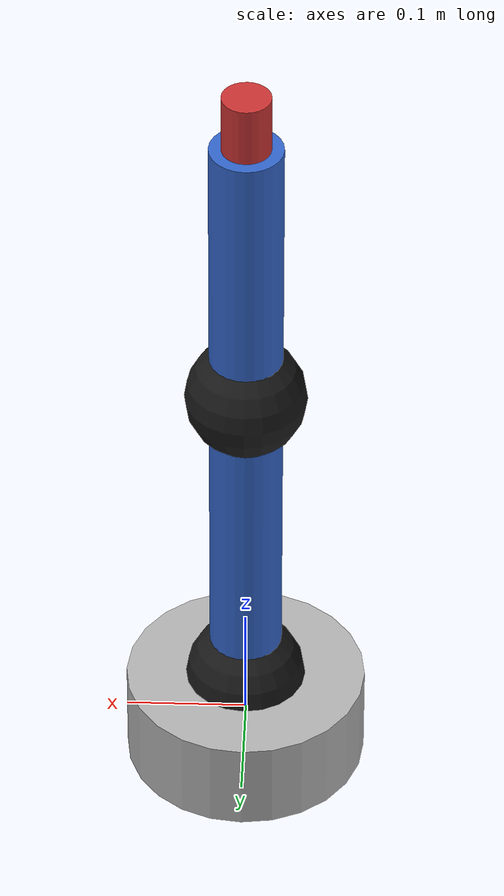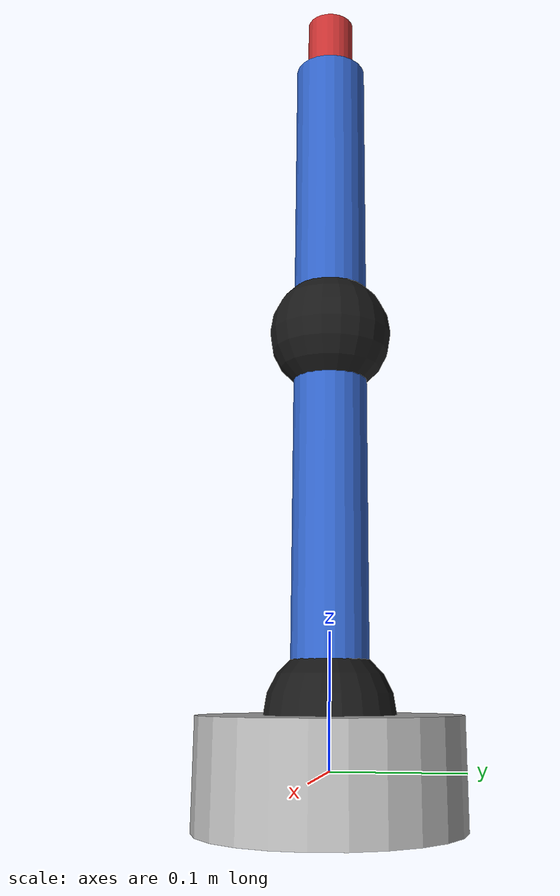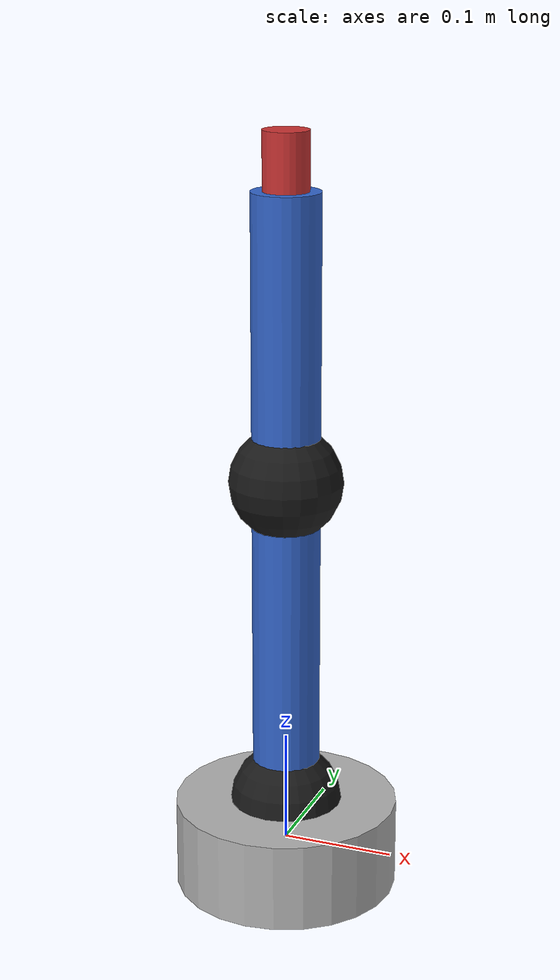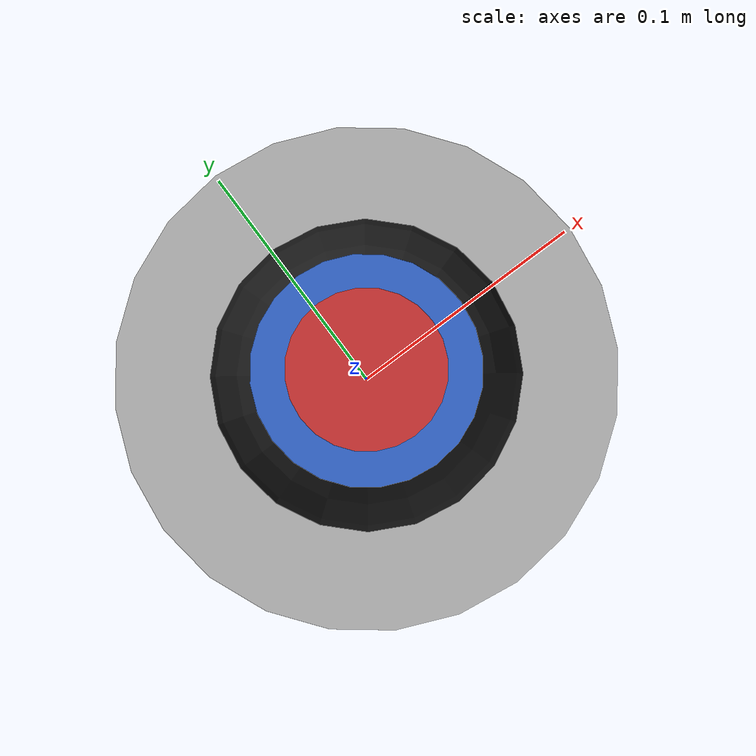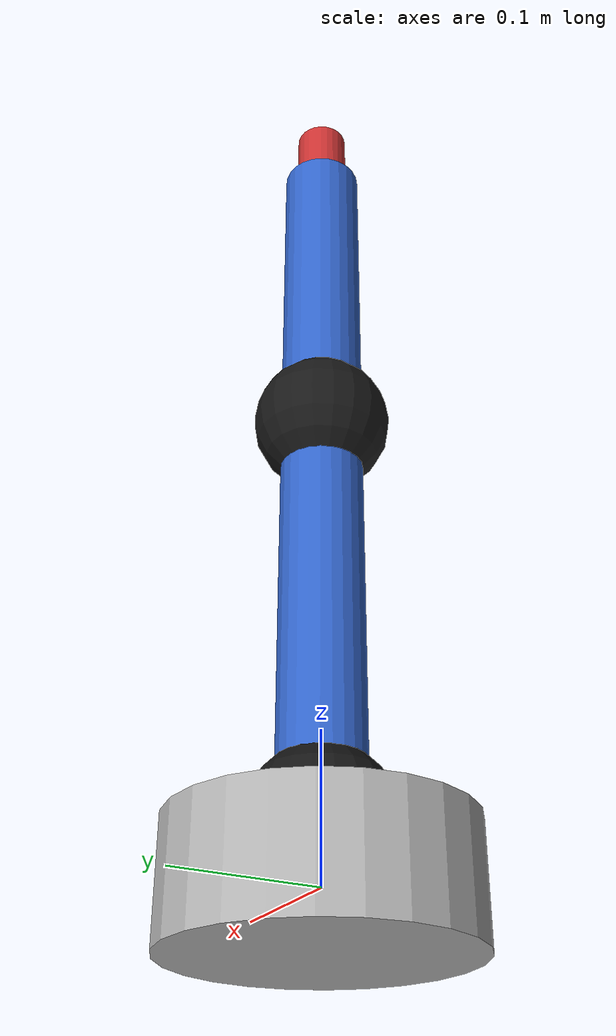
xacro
<?xml version="1.0"?>

<robot xmlns:xacro="http://www.ros.org/wiki/xacro" name="basicmicro_two_axis_arm">

  <!-- Xacro arguments with arm defaults -->
  <xacro:arg name="port" default="/dev/ttyACM1"/>
  <xacro:arg name="baud" default="38400"/>
  <xacro:arg name="address" default="128"/>
  <xacro:arg name="joint1_min_position" default="${-pi}"/>
  <xacro:arg name="joint1_max_position" default="${pi}"/>
  <xacro:arg name="joint2_min_position" default="${-pi/2}"/>
  <xacro:arg name="joint2_max_position" default="${pi/2}"/>
  <xacro:arg name="link1_length" default="0.3"/>
  <xacro:arg name="link2_length" default="0.25"/>
  <xacro:arg name="max_velocity" default="2.0"/>
  <xacro:arg name="max_acceleration" default="5.0"/>
  <xacro:arg name="gear_ratio" default="50.0"/>
  <xacro:arg name="encoder_counts_per_rev" default="2000"/>

  <!-- Arm Physical Properties -->
  <xacro:property name="link1_length" value="$(arg link1_length)"/>
  <xacro:property name="link2_length" value="$(arg link2_length)"/>
  <xacro:property name="joint_radius" value="0.05"/>
  <xacro:property name="link_radius" value="0.03"/>

  <!-- Base properties -->
  <xacro:property name="base_radius" value="0.1"/>
  <xacro:property name="base_height" value="0.08"/>
  <xacro:property name="base_mass" value="2.0"/>

  <!-- Link masses and inertias -->
  <xacro:property name="link1_mass" value="1.5"/>
  <xacro:property name="link2_mass" value="1.0"/>
  <xacro:property name="joint_mass" value="0.5"/>

  <!-- End-effector properties -->
  <xacro:property name="ee_radius" value="0.02"/>
  <xacro:property name="ee_length" value="0.05"/>
  <xacro:property name="ee_mass" value="0.2"/>

  <!-- Arm Colors -->
  <material name="arm_blue">
    <color rgba="0.2 0.4 0.8 1.0"/>
  </material>

  <material name="arm_silver">
    <color rgba="0.7 0.7 0.7 1.0"/>
  </material>

  <material name="arm_black">
    <color rgba="0.1 0.1 0.1 1.0"/>
  </material>

  <material name="arm_red">
    <color rgba="0.8 0.2 0.2 1.0"/>
  </material>

  <!-- Inertia Macros -->
  <xacro:macro name="cylinder_inertia" params="mass radius length">
    <inertial>
      <mass value="${mass}"/>
      <inertia ixx="${mass * (3*radius*radius + length*length) / 12}"
               iyy="${mass * (3*radius*radius + length*length) / 12}"
               izz="${mass * radius*radius / 2}"
               ixy="0" ixz="0" iyz="0"/>
    </inertial>
  </xacro:macro>

  <xacro:macro name="sphere_inertia" params="mass radius">
    <inertial>
      <mass value="${mass}"/>
      <inertia ixx="${2 * mass * radius*radius / 5}"
               iyy="${2 * mass * radius*radius / 5}"
               izz="${2 * mass * radius*radius / 5}"
               ixy="0" ixz="0" iyz="0"/>
    </inertial>
  </xacro:macro>

  <!-- Base Link (Fixed mounting base) -->
  <link name="base_link">
    <visual>
      <geometry>
        <cylinder radius="${base_radius}" length="${base_height}"/>
      </geometry>
      <material name="arm_silver"/>
    </visual>
    <collision>
      <geometry>
        <cylinder radius="${base_radius}" length="${base_height}"/>
      </geometry>
    </collision>
    <xacro:cylinder_inertia mass="${base_mass}" radius="${base_radius}" length="${base_height}"/>
  </link>

  <!-- Shoulder Joint Housing -->
  <link name="shoulder_joint_housing">
    <visual>
      <geometry>
        <sphere radius="${joint_radius}"/>
      </geometry>
      <material name="arm_black"/>
    </visual>
    <collision>
      <geometry>
        <sphere radius="${joint_radius}"/>
      </geometry>
    </collision>
    <xacro:sphere_inertia mass="${joint_mass}" radius="${joint_radius}"/>
  </link>

  <!-- Link 1 (Upper arm) -->
  <link name="link1">
    <visual>
      <origin xyz="0 0 ${link1_length/2}" rpy="0 0 0"/>
      <geometry>
        <cylinder radius="${link_radius}" length="${link1_length}"/>
      </geometry>
      <material name="arm_blue"/>
    </visual>
    <collision>
      <origin xyz="0 0 ${link1_length/2}" rpy="0 0 0"/>
      <geometry>
        <cylinder radius="${link_radius}" length="${link1_length}"/>
      </geometry>
    </collision>
    <inertial>
      <origin xyz="0 0 ${link1_length/2}" rpy="0 0 0"/>
      <mass value="${link1_mass}"/>
      <inertia ixx="${link1_mass * (3*link_radius*link_radius + link1_length*link1_length) / 12}"
               iyy="${link1_mass * (3*link_radius*link_radius + link1_length*link1_length) / 12}"
               izz="${link1_mass * link_radius*link_radius / 2}"
               ixy="0" ixz="0" iyz="0"/>
    </inertial>
  </link>

  <!-- Elbow Joint Housing -->
  <link name="elbow_joint_housing">
    <visual>
      <geometry>
        <sphere radius="${joint_radius}"/>
      </geometry>
      <material name="arm_black"/>
    </visual>
    <collision>
      <geometry>
        <sphere radius="${joint_radius}"/>
      </geometry>
    </collision>
    <xacro:sphere_inertia mass="${joint_mass}" radius="${joint_radius}"/>
  </link>

  <!-- Link 2 (Forearm) -->
  <link name="link2">
    <visual>
      <origin xyz="0 0 ${link2_length/2}" rpy="0 0 0"/>
      <geometry>
        <cylinder radius="${link_radius}" length="${link2_length}"/>
      </geometry>
      <material name="arm_blue"/>
    </visual>
    <collision>
      <origin xyz="0 0 ${link2_length/2}" rpy="0 0 0"/>
      <geometry>
        <cylinder radius="${link_radius}" length="${link2_length}"/>
      </geometry>
    </collision>
    <inertial>
      <origin xyz="0 0 ${link2_length/2}" rpy="0 0 0"/>
      <mass value="${link2_mass}"/>
      <inertia ixx="${link2_mass * (3*link_radius*link_radius + link2_length*link2_length) / 12}"
               iyy="${link2_mass * (3*link_radius*link_radius + link2_length*link2_length) / 12}"
               izz="${link2_mass * link_radius*link_radius / 2}"
               ixy="0" ixz="0" iyz="0"/>
    </inertial>
  </link>

  <!-- End Effector -->
  <link name="end_effector">
    <visual>
      <origin xyz="0 0 ${ee_length/2}" rpy="0 0 0"/>
      <geometry>
        <cylinder radius="${ee_radius}" length="${ee_length}"/>
      </geometry>
      <material name="arm_red"/>
    </visual>
    <collision>
      <origin xyz="0 0 ${ee_length/2}" rpy="0 0 0"/>
      <geometry>
        <cylinder radius="${ee_radius}" length="${ee_length}"/>
      </geometry>
    </collision>
    <inertial>
      <origin xyz="0 0 ${ee_length/2}" rpy="0 0 0"/>
      <mass value="${ee_mass}"/>
      <inertia ixx="${ee_mass * (3*ee_radius*ee_radius + ee_length*ee_length) / 12}"
               iyy="${ee_mass * (3*ee_radius*ee_radius + ee_length*ee_length) / 12}"
               izz="${ee_mass * ee_radius*ee_radius / 2}"
               ixy="0" ixz="0" iyz="0"/>
    </inertial>
  </link>

  <!-- Base to Shoulder Joint Housing -->
  <joint name="base_to_shoulder" type="fixed">
    <parent link="base_link"/>
    <child link="shoulder_joint_housing"/>
    <origin xyz="0 0 ${base_height/2}" rpy="0 0 0"/>
  </joint>

  <!-- Joint 1: Shoulder (Rotation around Z-axis) -->
  <joint name="joint1" type="revolute">
    <parent link="shoulder_joint_housing"/>
    <child link="link1"/>
    <origin xyz="0 0 0" rpy="0 0 0"/>
    <axis xyz="0 0 1"/>
    <limit lower="$(arg joint1_min_position)"
           upper="$(arg joint1_max_position)"
           effort="50.0"
           velocity="$(arg max_velocity)"/>
  </joint>

  <!-- Link 1 to Elbow Joint Housing -->
  <joint name="link1_to_elbow" type="fixed">
    <parent link="link1"/>
    <child link="elbow_joint_housing"/>
    <origin xyz="0 0 ${link1_length}" rpy="0 0 0"/>
  </joint>

  <!-- Joint 2: Elbow (Rotation around Y-axis) -->
  <joint name="joint2" type="revolute">
    <parent link="elbow_joint_housing"/>
    <child link="link2"/>
    <origin xyz="0 0 0" rpy="0 0 0"/>
    <axis xyz="0 1 0"/>
    <limit lower="$(arg joint2_min_position)"
           upper="$(arg joint2_max_position)"
           effort="30.0"
           velocity="$(arg max_velocity)"/>
  </joint>

  <!-- Link 2 to End Effector -->
  <joint name="link2_to_end_effector" type="fixed">
    <parent link="link2"/>
    <child link="end_effector"/>
    <origin xyz="0 0 ${link2_length}" rpy="0 0 0"/>
  </joint>

  <!-- ros2_control Hardware Interface (Servo Position Control) -->
  <ros2_control name="BasicmicroArmSystem" type="system">
    <hardware>
      <plugin>basicmicro_ros2/BasicmicroHardwareInterface</plugin>

      <!-- Hardware connection parameters -->
      <param name="port">$(arg port)</param>
      <param name="baud">$(arg baud)</param>
      <param name="address">$(arg address)</param>

      <!-- Arm physical parameters -->
      <param name="gear_ratio">$(arg gear_ratio)</param>
      <param name="encoder_counts_per_rev">$(arg encoder_counts_per_rev)</param>

      <!-- Servo control parameters -->
      <param name="motion_strategy">position</param>
      <param name="buffer_depth">16</param>
      <param name="default_acceleration">$(arg max_acceleration)</param>
      <param name="max_velocity">$(arg max_velocity)</param>
      <param name="max_acceleration">$(arg max_acceleration)</param>

      <!-- Servo positioning parameters -->
      <param name="servo_control_enabled">true</param>
      <param name="position_tolerance">0.01</param>
      <param name="max_position_error">1000</param>
      <param name="max_speed_error">500</param>
      <param name="servo_update_rate">50.0</param>

      <!-- Homing configuration -->
      <param name="auto_home_on_startup">false</param>
      <param name="default_homing_method">manual_zero</param>
      <param name="homing_speed">0.1</param>
      <param name="homing_timeout">30.0</param>

      <!-- Joint limits and safety -->
      <param name="position_limits_enabled">true</param>
      <param name="joint1_min_position">$(arg joint1_min_position)</param>
      <param name="joint1_max_position">$(arg joint1_max_position)</param>
      <param name="joint2_min_position">$(arg joint2_min_position)</param>
      <param name="joint2_max_position">$(arg joint2_max_position)</param>
      <param name="limit_violation_behavior">soft_stop</param>
      <param name="limit_decel_rate">10.0</param>

      <!-- Monitoring parameters -->
      <param name="current_monitoring_enabled">true</param>
      <param name="temperature_monitoring_enabled">true</param>
      <param name="voltage_monitoring_enabled">true</param>
      <param name="max_current_threshold">5.0</param>
      <param name="max_temperature_threshold">70.0</param>
      <param name="min_voltage_threshold">11.0</param>
    </hardware>

    <!-- Joint 1 Interface (Shoulder) -->
    <joint name="joint1">
      <command_interface name="position">
        <param name="min">$(arg joint1_min_position)</param>
        <param name="max">$(arg joint1_max_position)</param>
      </command_interface>
      <state_interface name="position"/>
      <state_interface name="velocity"/>
      <state_interface name="effort"/>
    </joint>

    <!-- Joint 2 Interface (Elbow) -->
    <joint name="joint2">
      <command_interface name="position">
        <param name="min">$(arg joint2_min_position)</param>
        <param name="max">$(arg joint2_max_position)</param>
      </command_interface>
      <state_interface name="position"/>
      <state_interface name="velocity"/>
      <state_interface name="effort"/>
    </joint>
  </ros2_control>

  <!-- Gazebo Integration -->
  <gazebo>
    <plugin filename="libgazebo_ros2_control.so" name="gazebo_ros2_control">
      <parameters>$(find basicmicro_ros2)/config/arm_controllers.yaml</parameters>
    </plugin>
  </gazebo>

  <!-- Gazebo Material Properties -->
  <gazebo reference="base_link">
    <material>Gazebo/Grey</material>
  </gazebo>

  <gazebo reference="shoulder_joint_housing">
    <material>Gazebo/Black</material>
  </gazebo>

  <gazebo reference="link1">
    <material>Gazebo/Blue</material>
  </gazebo>

  <gazebo reference="elbow_joint_housing">
    <material>Gazebo/Black</material>
  </gazebo>

  <gazebo reference="link2">
    <material>Gazebo/Blue</material>
  </gazebo>

  <gazebo reference="end_effector">
    <material>Gazebo/Red</material>
  </gazebo>

</robot>
